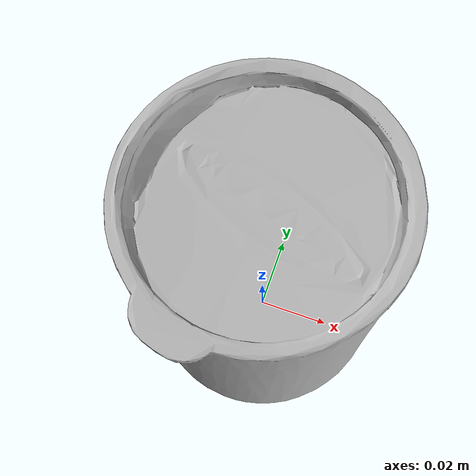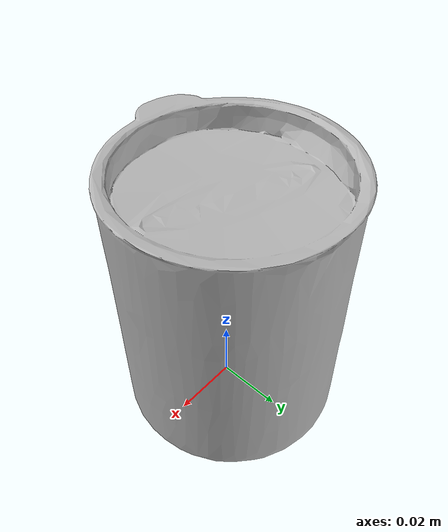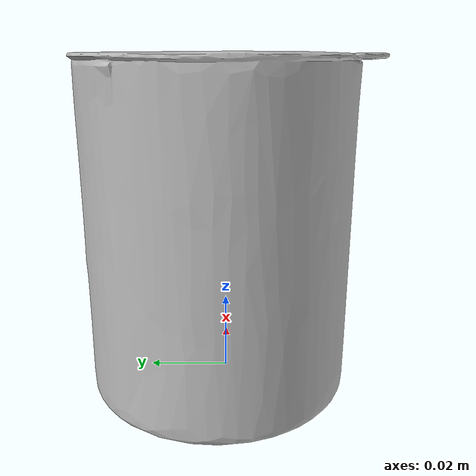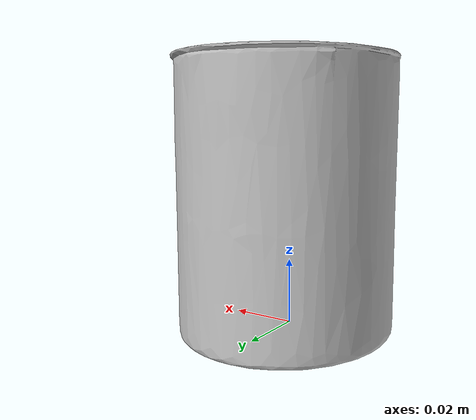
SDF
<?xml version="1.0" ?>
<sdf version="1.5">
  <model name="tomato_soup">
  <static>true</static>
  <pose>0 0 0 0 0 0</pose>
    <link name="link">
      <inertial>
        <mass>1.0</mass>
        <inertia>
          <ixx>0.001058</ixx>
          <ixy>0.0</ixy>
          <ixz>0.0</ixz>
          <iyy>0.001058</iyy>
          <iyz>0.0</iyz>
          <izz>0.00045</izz>
        </inertia>
      </inertial>
      <collision name="collision">
        <pose>0 0 0 0 0 0</pose>
        <geometry>
          <mesh>
            <uri>model://tomato_soup/tomato_soup.stl</uri>
            <scale>1 1 1</scale>
          </mesh>
        </geometry>
      </collision>
      <visual name="visual">
        <pose>0 0 0 0 0 0</pose>
        <geometry>
          <mesh>
            <uri>model://tomato_soup/tomato_soup.dae</uri>
            <scale>1 1 1</scale>
          </mesh>
        </geometry>
      </visual>
    </link>
  </model>
</sdf>
